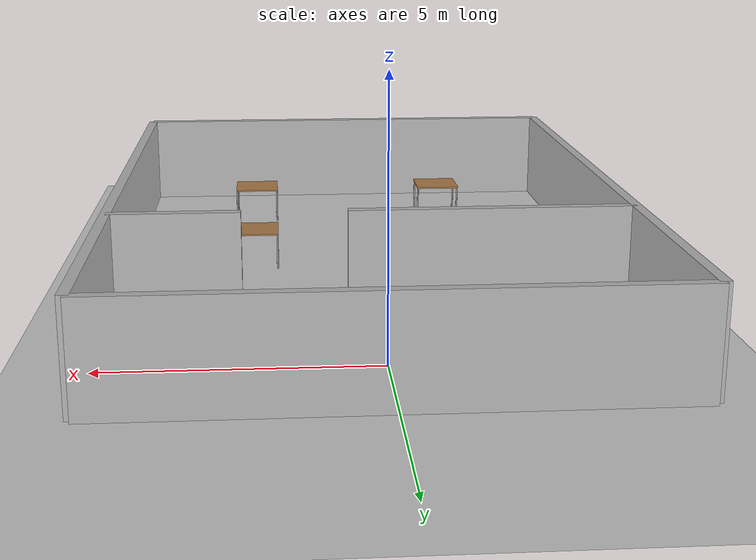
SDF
<sdf version="1.6">
 <world name="default">
  <physics name="default_physics" default="0" type="ode">
   <ode>
    <solver>
     <type>quick</type>
     <iters>20</iters>
     <sor>1</sor>
     <use_dynamic_moi_rescaling>0</use_dynamic_moi_rescaling>
    </solver>
    <constraints>
     <cfm>0</cfm>
     <erp>0.2</erp>
     <contact_max_correcting_vel>100</contact_max_correcting_vel>
     <contact_surface_layer>0</contact_surface_layer>
    </constraints>
   </ode>
   <max_step_size>0.001</max_step_size>
   <real_time_factor>2</real_time_factor>
   <max_contacts>20</max_contacts>
  </physics>
  <light name="sun" type="directional">
   <pose>0 0 10 0 -0 0</pose>
   <diffuse>0.8 0.8 0.8 1</diffuse>
   <specular>0.2 0.2 0.2 1</specular>
   <attenuation>
    <range>1000</range>
    <constant>0.9</constant>
    <linear>0.01</linear>
    <quadratic>0.001</quadratic>
   </attenuation>
   <direction>0.5 0.1 -0.9</direction>
  </light>
  <model name="ground_plane">
   <static>1</static>
   <link name="link">
    <collision name="collision">
     <geometry><plane><normal>0 0 1</normal><size>100 100</size></plane></geometry>
     <surface><friction><ode><mu>100</mu><mu2>50</mu2></ode></friction></surface>
    </collision>
    <visual name="visual">
     <cast_shadows>0</cast_shadows>
     <geometry><plane><normal>0 0 1</normal><size>100 100</size></plane></geometry>
     <material>
      <script><uri>file://media/materials/scripts/gazebo.material</uri><name>Gazebo/Grey</name></script>
     </material>
    </visual>
    <velocity_decay><linear>0</linear><angular>0</angular></velocity_decay>
   </link>
  </model>
  <model name="wall_1_model">
   <pose>0 -13 1 0 -0 0</pose>
   <static>1</static>
   <link name="wall_1_body">
    <inertial>
     <mass>1</mass>
     <inertia><ixx>1</ixx><ixy>0</ixy><ixz>0</ixz><iyy>1</iyy><iyz>0</iyz><izz>1</izz></inertia>
    </inertial>
    <collision name="collision"><geometry><box><size>10 0.2 2</size></box></geometry></collision>
    <visual name="visual"><geometry><box><size>10 0.2 2</size></box></geometry></visual>
    <velocity_decay><linear>0</linear><angular>0</angular></velocity_decay>
   </link>
  </model>
  <model name="wall_2_model">
   <pose>0 2 1 0 -0 0</pose>
   <static>1</static>
   <link name="wall_2_body">
    <inertial>
     <mass>1</mass>
     <inertia><ixx>1</ixx><ixy>0</ixy><ixz>0</ixz><iyy>1</iyy><iyz>0</iyz><izz>1</izz></inertia>
    </inertial>
    <collision name="collision"><geometry><box><size>10 0.2 2</size></box></geometry></collision>
    <visual name="visual"><geometry><box><size>10 0.2 2</size></box></geometry></visual>
    <velocity_decay><linear>0</linear><angular>0</angular></velocity_decay>
   </link>
  </model>
  <model name="wall_3_model">
   <pose>-5 -5.5 1 0 -0 0</pose>
   <static>1</static>
   <link name="wall_3_body">
    <inertial>
     <mass>1</mass>
     <inertia><ixx>1</ixx><ixy>0</ixy><ixz>0</ixz><iyy>1</iyy><iyz>0</iyz><izz>1</izz></inertia>
    </inertial>
    <collision name="collision"><geometry><box><size>0.2 15 2</size></box></geometry></collision>
    <visual name="visual"><geometry><box><size>0.2 15 2</size></box></geometry></visual>
    <velocity_decay><linear>0</linear><angular>0</angular></velocity_decay>
   </link>
  </model>
  <model name="wall_4_model">
   <pose>5 -5.5 1 0 -0 0</pose>
   <static>1</static>
   <link name="wall_4_body">
    <inertial>
     <mass>1</mass>
     <inertia><ixx>1</ixx><ixy>0</ixy><ixz>0</ixz><iyy>1</iyy><iyz>0</iyz><izz>1</izz></inertia>
    </inertial>
    <collision name="collision"><geometry><box><size>0.2 15 2</size></box></geometry></collision>
    <visual name="visual"><geometry><box><size>0.2 15 2</size></box></geometry></visual>
    <velocity_decay><linear>0</linear><angular>0</angular></velocity_decay>
   </link>
  </model>
  <model name="wall_5_model">
   <pose>-2.25 -3 1 0 -0 0</pose>
   <static>1</static>
   <link name="wall_5_body">
    <inertial>
     <mass>1</mass>
     <inertia><ixx>1</ixx><ixy>0</ixy><ixz>0</ixz><iyy>1</iyy><iyz>0</iyz><izz>1</izz></inertia>
    </inertial>
    <collision name="collision"><geometry><box><size>5.5 0.2 2</size></box></geometry></collision>
    <visual name="visual"><geometry><box><size>5.5 0.2 2</size></box></geometry></visual>
    <velocity_decay><linear>0</linear><angular>0</angular></velocity_decay>
   </link>
  </model>
  <model name="wall_6_model">
   <pose>3.75 -3 1 0 -0 0</pose>
   <static>1</static>
   <link name="wall_6_body">
    <inertial>
     <mass>1</mass>
     <inertia><ixx>1</ixx><ixy>0</ixy><ixz>0</ixz><iyy>1</iyy><iyz>0</iyz><izz>1</izz></inertia>
    </inertial>
    <collision name="collision"><geometry><box><size>2.5 0.2 2</size></box></geometry></collision>
    <visual name="visual"><geometry><box><size>2.5 0.2 2</size></box></geometry></visual>
    <velocity_decay><linear>0</linear><angular>0</angular></velocity_decay>
   </link>
  </model>
  <scene><ambient>0.2 0.2 0.2 1</ambient><background>0.7 0.7 0.7 1</background><shadows>1</shadows></scene>
  <gravity>0 0 -9.81</gravity>
  <magnetic_field>6e-06 2.3e-05 -4.2e-05</magnetic_field>
  <atmosphere type="adiabatic"/>
  <audio><device>default</device></audio>
  <spherical_coordinates>
   <surface_model>EARTH_WGS84</surface_model>
   <latitude_deg>0</latitude_deg>
   <longitude_deg>0</longitude_deg>
   <elevation>0</elevation>
   <heading_deg>0</heading_deg>
  </spherical_coordinates>
  <model name="table_1m">
   <static>1</static>
   <link name="link">
    <collision name="surface">
     <pose>0 0 1.01 0 -0 0</pose>
     <geometry><box><size>1 1.01 0.03</size></box></geometry>
    </collision>
    <visual name="visual1">
     <pose>0 0 1.01 0 -0 0</pose>
     <geometry><box><size>1 1.01 0.03</size></box></geometry>
     <material>
      <script><uri>file://media/materials/scripts/gazebo.material</uri><name>Gazebo/Wood</name></script>
     </material>
    </visual>
    <collision name="front_left_leg">
     <pose>0.48 0.38 0.5005 0 -0 0</pose>
     <geometry><cylinder><radius>0.02</radius><length>1.01</length></cylinder></geometry>
    </collision>
    <visual name="front_left_leg">
     <pose>0.48 0.38 0.5005 0 -0 0</pose>
     <geometry><cylinder><radius>0.02</radius><length>1.01</length></cylinder></geometry>
     <material>
      <script><uri>file://media/materials/scripts/gazebo.material</uri><name>Gazebo/Grey</name></script>
     </material>
    </visual>
    <collision name="front_right_leg">
     <pose>0.48 -0.38 0.5005 0 -0 0</pose>
     <geometry><cylinder><radius>0.02</radius><length>1.01</length></cylinder></geometry>
    </collision>
    <visual name="front_right_leg">
     <pose>0.48 -0.38 0.5005 0 -0 0</pose>
     <geometry><cylinder><radius>0.02</radius><length>1.01</length></cylinder></geometry>
     <material>
      <script><uri>file://media/materials/scripts/gazebo.material</uri><name>Gazebo/Grey</name></script>
     </material>
    </visual>
    <collision name="back_right_leg">
     <pose>-0.48 -0.38 0.5005 0 -0 0</pose>
     <geometry><cylinder><radius>0.02</radius><length>1.01</length></cylinder></geometry>
    </collision>
    <visual name="back_right_leg">
     <pose>-0.48 -0.38 0.5005 0 -0 0</pose>
     <geometry><cylinder><radius>0.02</radius><length>1.01</length></cylinder></geometry>
     <material>
      <script><uri>file://media/materials/scripts/gazebo.material</uri><name>Gazebo/Grey</name></script>
     </material>
    </visual>
    <collision name="back_left_leg">
     <pose>-0.48 0.38 0.5005 0 -0 0</pose>
     <geometry><cylinder><radius>0.02</radius><length>1.01</length></cylinder></geometry>
    </collision>
    <visual name="back_left_leg">
     <pose>-0.48 0.38 0.5005 0 -0 0</pose>
     <geometry><cylinder><radius>0.02</radius><length>1.01</length></cylinder></geometry>
     <material>
      <script><uri>file://media/materials/scripts/gazebo.material</uri><name>Gazebo/Grey</name></script>
     </material>
    </visual>
    <velocity_decay><linear>0</linear><angular>0</angular></velocity_decay>
   </link>
   <pose>-2.11863 -10.638 -0.25 0 -0 0</pose>
  </model>
  <model name="table_1m_0">
   <static>1</static>
   <link name="link">
    <collision name="surface">
     <pose>0 0 1.01 0 -0 0</pose>
     <geometry><box><size>1 1.01 0.03</size></box></geometry>
    </collision>
    <visual name="visual1">
     <pose>0 0 1.01 0 -0 0</pose>
     <geometry><box><size>1 1.01 0.03</size></box></geometry>
     <material>
      <script><uri>file://media/materials/scripts/gazebo.material</uri><name>Gazebo/Wood</name></script>
     </material>
    </visual>
    <collision name="front_left_leg">
     <pose>0.48 0.38 0.5005 0 -0 0</pose>
     <geometry><cylinder><radius>0.02</radius><length>1.01</length></cylinder></geometry>
    </collision>
    <visual name="front_left_leg">
     <pose>0.48 0.38 0.5005 0 -0 0</pose>
     <geometry><cylinder><radius>0.02</radius><length>1.01</length></cylinder></geometry>
     <material>
      <script><uri>file://media/materials/scripts/gazebo.material</uri><name>Gazebo/Grey</name></script>
     </material>
    </visual>
    <collision name="front_right_leg">
     <pose>0.48 -0.38 0.5005 0 -0 0</pose>
     <geometry><cylinder><radius>0.02</radius><length>1.01</length></cylinder></geometry>
    </collision>
    <visual name="front_right_leg">
     <pose>0.48 -0.38 0.5005 0 -0 0</pose>
     <geometry><cylinder><radius>0.02</radius><length>1.01</length></cylinder></geometry>
     <material>
      <script><uri>file://media/materials/scripts/gazebo.material</uri><name>Gazebo/Grey</name></script>
     </material>
    </visual>
    <collision name="back_right_leg">
     <pose>-0.48 -0.38 0.5005 0 -0 0</pose>
     <geometry><cylinder><radius>0.02</radius><length>1.01</length></cylinder></geometry>
    </collision>
    <visual name="back_right_leg">
     <pose>-0.48 -0.38 0.5005 0 -0 0</pose>
     <geometry><cylinder><radius>0.02</radius><length>1.01</length></cylinder></geometry>
     <material>
      <script><uri>file://media/materials/scripts/gazebo.material</uri><name>Gazebo/Grey</name></script>
     </material>
    </visual>
    <collision name="back_left_leg">
     <pose>-0.48 0.38 0.5005 0 -0 0</pose>
     <geometry><cylinder><radius>0.02</radius><length>1.01</length></cylinder></geometry>
    </collision>
    <visual name="back_left_leg">
     <pose>-0.48 0.38 0.5005 0 -0 0</pose>
     <geometry><cylinder><radius>0.02</radius><length>1.01</length></cylinder></geometry>
     <material>
      <script><uri>file://media/materials/scripts/gazebo.material</uri><name>Gazebo/Grey</name></script>
     </material>
    </visual>
    <velocity_decay><linear>0</linear><angular>0</angular></velocity_decay>
   </link>
   <pose>2.30864 -6.43188 -0.25 0 -0 0</pose>
  </model>
  <model name="table_1m_1">
   <static>1</static>
   <link name="link">
    <collision name="surface">
     <pose>0 0 1.01 0 -0 0</pose>
     <geometry><box><size>1 1.01 0.03</size></box></geometry>
    </collision>
    <visual name="visual1">
     <pose>0 0 1.01 0 -0 0</pose>
     <geometry><box><size>1 1.01 0.03</size></box></geometry>
     <material>
      <script><uri>file://media/materials/scripts/gazebo.material</uri><name>Gazebo/Wood</name></script>
     </material>
    </visual>
    <collision name="front_left_leg">
     <pose>0.48 0.38 0.5005 0 -0 0</pose>
     <geometry><cylinder><radius>0.02</radius><length>1.01</length></cylinder></geometry>
    </collision>
    <visual name="front_left_leg">
     <pose>0.48 0.38 0.5005 0 -0 0</pose>
     <geometry><cylinder><radius>0.02</radius><length>1.01</length></cylinder></geometry>
     <material>
      <script><uri>file://media/materials/scripts/gazebo.material</uri><name>Gazebo/Grey</name></script>
     </material>
    </visual>
    <collision name="front_right_leg">
     <pose>0.48 -0.38 0.5005 0 -0 0</pose>
     <geometry><cylinder><radius>0.02</radius><length>1.01</length></cylinder></geometry>
    </collision>
    <visual name="front_right_leg">
     <pose>0.48 -0.38 0.5005 0 -0 0</pose>
     <geometry><cylinder><radius>0.02</radius><length>1.01</length></cylinder></geometry>
     <material>
      <script><uri>file://media/materials/scripts/gazebo.material</uri><name>Gazebo/Grey</name></script>
     </material>
    </visual>
    <collision name="back_right_leg">
     <pose>-0.48 -0.38 0.5005 0 -0 0</pose>
     <geometry><cylinder><radius>0.02</radius><length>1.01</length></cylinder></geometry>
    </collision>
    <visual name="back_right_leg">
     <pose>-0.48 -0.38 0.5005 0 -0 0</pose>
     <geometry><cylinder><radius>0.02</radius><length>1.01</length></cylinder></geometry>
     <material>
      <script><uri>file://media/materials/scripts/gazebo.material</uri><name>Gazebo/Grey</name></script>
     </material>
    </visual>
    <collision name="back_left_leg">
     <pose>-0.48 0.38 0.5005 0 -0 0</pose>
     <geometry><cylinder><radius>0.02</radius><length>1.01</length></cylinder></geometry>
    </collision>
    <visual name="back_left_leg">
     <pose>-0.48 0.38 0.5005 0 -0 0</pose>
     <geometry><cylinder><radius>0.02</radius><length>1.01</length></cylinder></geometry>
     <material>
      <script><uri>file://media/materials/scripts/gazebo.material</uri><name>Gazebo/Grey</name></script>
     </material>
    </visual>
    <velocity_decay><linear>0</linear><angular>0</angular></velocity_decay>
   </link>
   <pose>2.30864 -10.6299 -0.25 0 -0 0</pose>
  </model>
  <model name="table">
   <static>1</static>
   <link name="link">
    <collision name="surface">
     <pose>0 0 1 0 -0 0</pose>
     <geometry><box><size>1.5 0.8 0.03</size></box></geometry>
     <surface><friction><ode><mu>0.6</mu><mu2>0.6</mu2></ode></friction></surface>
    </collision>
    <visual name="visual1">
     <pose>0 0 1 0 -0 0</pose>
     <geometry><box><size>1.5 0.8 0.03</size></box></geometry>
     <material>
      <script><uri>file://media/materials/scripts/gazebo.material</uri><name>Gazebo/Wood</name></script>
     </material>
    </visual>
    <collision name="front_left_leg">
     <pose>0.68 0.38 0.5 0 -0 0</pose>
     <geometry><cylinder><radius>0.02</radius><length>1</length></cylinder></geometry>
    </collision>
    <visual name="front_left_leg">
     <pose>0.68 0.38 0.5 0 -0 0</pose>
     <geometry><cylinder><radius>0.02</radius><length>1</length></cylinder></geometry>
     <material>
      <script><uri>file://media/materials/scripts/gazebo.material</uri><name>Gazebo/Grey</name></script>
     </material>
    </visual>
    <collision name="front_right_leg">
     <pose>0.68 -0.38 0.5 0 -0 0</pose>
     <geometry><cylinder><radius>0.02</radius><length>1</length></cylinder></geometry>
    </collision>
    <visual name="front_right_leg">
     <pose>0.68 -0.38 0.5 0 -0 0</pose>
     <geometry><cylinder><radius>0.02</radius><length>1</length></cylinder></geometry>
     <material>
      <script><uri>file://media/materials/scripts/gazebo.material</uri><name>Gazebo/Grey</name></script>
     </material>
    </visual>
    <collision name="back_right_leg">
     <pose>-0.68 -0.38 0.5 0 -0 0</pose>
     <geometry><cylinder><radius>0.02</radius><length>1</length></cylinder></geometry>
    </collision>
    <visual name="back_right_leg">
     <pose>-0.68 -0.38 0.5 0 -0 0</pose>
     <geometry><cylinder><radius>0.02</radius><length>1</length></cylinder></geometry>
     <material>
      <script><uri>file://media/materials/scripts/gazebo.material</uri><name>Gazebo/Grey</name></script>
     </material>
    </visual>
    <collision name="back_left_leg">
     <pose>-0.68 0.38 0.5 0 -0 0</pose>
     <geometry><cylinder><radius>0.02</radius><length>1</length></cylinder></geometry>
    </collision>
    <visual name="back_left_leg">
     <pose>-0.68 0.38 0.5 0 -0 0</pose>
     <geometry><cylinder><radius>0.02</radius><length>1</length></cylinder></geometry>
     <material>
      <script><uri>file://media/materials/scripts/gazebo.material</uri><name>Gazebo/Grey</name></script>
     </material>
    </visual>
   </link>
   <pose>-2.67867 1.28669 -0.25 0 -0 0</pose>
  </model>
  <model name="table_1m_1_clone">
   <static>1</static>
   <link name="link">
    <collision name="surface">
     <pose>0 0 1.01 0 -0 0</pose>
     <geometry><box><size>1 1.01 0.03</size></box></geometry>
    </collision>
    <visual name="visual1">
     <pose>0 0 1.01 0 -0 0</pose>
     <geometry><box><size>1 1.01 0.03</size></box></geometry>
     <material>
      <script><uri>file://media/materials/scripts/gazebo.material</uri><name>Gazebo/Wood</name></script>
     </material>
    </visual>
    <collision name="front_left_leg">
     <pose>0.48 0.38 0.5005 0 -0 0</pose>
     <geometry><cylinder><radius>0.02</radius><length>1.01</length></cylinder></geometry>
    </collision>
    <visual name="front_left_leg">
     <pose>0.48 0.38 0.5005 0 -0 0</pose>
     <geometry><cylinder><radius>0.02</radius><length>1.01</length></cylinder></geometry>
     <material>
      <script><uri>file://media/materials/scripts/gazebo.material</uri><name>Gazebo/Grey</name></script>
     </material>
    </visual>
    <collision name="front_right_leg">
     <pose>0.48 -0.38 0.5005 0 -0 0</pose>
     <geometry><cylinder><radius>0.02</radius><length>1.01</length></cylinder></geometry>
    </collision>
    <visual name="front_right_leg">
     <pose>0.48 -0.38 0.5005 0 -0 0</pose>
     <geometry><cylinder><radius>0.02</radius><length>1.01</length></cylinder></geometry>
     <material>
      <script><uri>file://media/materials/scripts/gazebo.material</uri><name>Gazebo/Grey</name></script>
     </material>
    </visual>
    <collision name="back_right_leg">
     <pose>-0.48 -0.38 0.5005 0 -0 0</pose>
     <geometry><cylinder><radius>0.02</radius><length>1.01</length></cylinder></geometry>
    </collision>
    <visual name="back_right_leg">
     <pose>-0.48 -0.38 0.5005 0 -0 0</pose>
     <geometry><cylinder><radius>0.02</radius><length>1.01</length></cylinder></geometry>
     <material>
      <script><uri>file://media/materials/scripts/gazebo.material</uri><name>Gazebo/Grey</name></script>
     </material>
    </visual>
    <collision name="back_left_leg">
     <pose>-0.48 0.38 0.5005 0 -0 0</pose>
     <geometry><cylinder><radius>0.02</radius><length>1.01</length></cylinder></geometry>
    </collision>
    <visual name="back_left_leg">
     <pose>-0.48 0.38 0.5005 0 -0 0</pose>
     <geometry><cylinder><radius>0.02</radius><length>1.01</length></cylinder></geometry>
     <material>
      <script><uri>file://media/materials/scripts/gazebo.material</uri><name>Gazebo/Grey</name></script>
     </material>
    </visual>
    <velocity_decay><linear>0</linear><angular>0</angular></velocity_decay>
   </link>
   <pose>3.80895 -1.02834 -0.25 0 -0 0</pose>
  </model>
  <model name="table_1m_clone">
   <static>1</static>
   <link name="link">
    <collision name="surface">
     <pose>0 0 1.01 0 -0 0</pose>
     <geometry><box><size>1 1.01 0.03</size></box></geometry>
    </collision>
    <visual name="visual1">
     <pose>0 0 1.01 0 -0 0</pose>
     <geometry><box><size>1 1.01 0.03</size></box></geometry>
     <material>
      <script><uri>file://media/materials/scripts/gazebo.material</uri><name>Gazebo/Wood</name></script>
     </material>
    </visual>
    <collision name="front_left_leg">
     <pose>0.48 0.38 0.5005 0 -0 0</pose>
     <geometry><cylinder><radius>0.02</radius><length>1.01</length></cylinder></geometry>
    </collision>
    <visual name="front_left_leg">
     <pose>0.48 0.38 0.5005 0 -0 0</pose>
     <geometry><cylinder><radius>0.02</radius><length>1.01</length></cylinder></geometry>
     <material>
      <script><uri>file://media/materials/scripts/gazebo.material</uri><name>Gazebo/Grey</name></script>
     </material>
    </visual>
    <collision name="front_right_leg">
     <pose>0.48 -0.38 0.5005 0 -0 0</pose>
     <geometry><cylinder><radius>0.02</radius><length>1.01</length></cylinder></geometry>
    </collision>
    <visual name="front_right_leg">
     <pose>0.48 -0.38 0.5005 0 -0 0</pose>
     <geometry><cylinder><radius>0.02</radius><length>1.01</length></cylinder></geometry>
     <material>
      <script><uri>file://media/materials/scripts/gazebo.material</uri><name>Gazebo/Grey</name></script>
     </material>
    </visual>
    <collision name="back_right_leg">
     <pose>-0.48 -0.38 0.5005 0 -0 0</pose>
     <geometry><cylinder><radius>0.02</radius><length>1.01</length></cylinder></geometry>
    </collision>
    <visual name="back_right_leg">
     <pose>-0.48 -0.38 0.5005 0 -0 0</pose>
     <geometry><cylinder><radius>0.02</radius><length>1.01</length></cylinder></geometry>
     <material>
      <script><uri>file://media/materials/scripts/gazebo.material</uri><name>Gazebo/Grey</name></script>
     </material>
    </visual>
    <collision name="back_left_leg">
     <pose>-0.48 0.38 0.5005 0 -0 0</pose>
     <geometry><cylinder><radius>0.02</radius><length>1.01</length></cylinder></geometry>
    </collision>
    <visual name="back_left_leg">
     <pose>-0.48 0.38 0.5005 0 -0 0</pose>
     <geometry><cylinder><radius>0.02</radius><length>1.01</length></cylinder></geometry>
     <material>
      <script><uri>file://media/materials/scripts/gazebo.material</uri><name>Gazebo/Grey</name></script>
     </material>
    </visual>
    <velocity_decay><linear>0</linear><angular>0</angular></velocity_decay>
   </link>
   <pose>-2.11863 -6.43188 -0.25 0 -0 0</pose>
  </model>
 </world>
</sdf>
